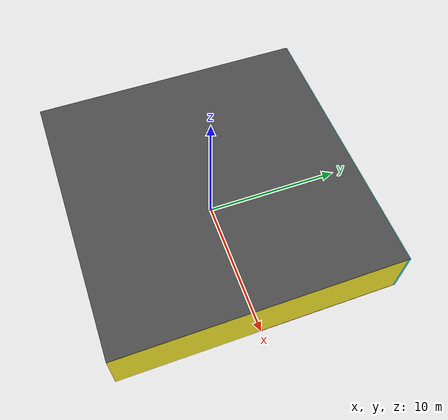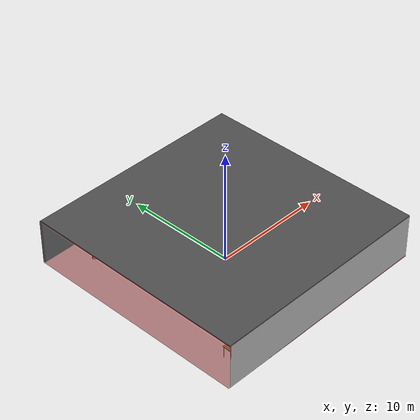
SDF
<sdf version="1.4">
 <world name="default">
  <physics type="ode">
   <max_step_size>0.001</max_step_size>
   <real_time_factor>1</real_time_factor>
   <real_time_update_rate>1000</real_time_update_rate>
   <gravity>0 0 -9.8</gravity>
  </physics>
  <scene><ambient>0.4 0.4 0.4 1</ambient><background>0.7 0.7 0.7 1</background><shadows>1</shadows></scene>
  <model name="Surrounding">
   <static>1</static>
   <link name="Ceiling">
    <collision name="Ceiling_Collision"><geometry><box><size>20 20 0.1</size></box></geometry></collision>
    <visual name="Ceiling_Visual">
     <geometry><box><size>20 20 0.1</size></box></geometry>
     <material>
      <script><uri>file://media/materials/scripts/gazebo.material</uri><name>Gazebo/Road</name></script>
     </material>
    </visual>
    <pose>0 0 4.05 0 0 0</pose>
   </link>
   <link name="Wall_South">
    <collision name="Wall_South_Collision">
     <geometry><box><size>20 0 4</size></box></geometry>
     <pose>0 0 2 0 -0 0</pose>
    </collision>
    <visual name="Wall_South_Visual">
     <pose>0 0 2 0 -0 0</pose>
     <geometry><box><size>20 0 4</size></box></geometry>
     <material>
      <script><uri>file://media/materials/scripts/gazebo.material</uri><name>Gazebo/CloudySky</name></script>
     </material>
    </visual>
    <velocity_decay><linear>0</linear><angular>0</angular></velocity_decay>
    <pose>0 -10 0 0 -0 0</pose>
   </link>
   <link name="Wall_East">
    <collision name="Wall_21_Collision">
     <geometry><box><size>20 0 4</size></box></geometry>
     <pose>0 0 2 0 -0 0</pose>
    </collision>
    <visual name="Wall_21_Visual">
     <pose>0 0 2 0 -0 0</pose>
     <geometry><box><size>20 0 4</size></box></geometry>
     <material>
      <script><uri>file://media/materials/scripts/gazebo.material</uri><name>Gazebo/YellowGlow</name></script>
     </material>
    </visual>
    <velocity_decay><linear>0</linear><angular>0</angular></velocity_decay>
    <pose>10 0 0 0 -0 1.5708</pose>
   </link>
   <link name="Wall_North">
    <collision name="Wall_22_Collision">
     <geometry><box><size>20 0.2 4</size></box></geometry>
     <pose>0 0 2 0 -0 0</pose>
    </collision>
    <visual name="Wall_22_Visual">
     <pose>0 0 2 0 -0 0</pose>
     <geometry><box><size>20 0.2 4</size></box></geometry>
     <material>
      <script><uri>file://media/materials/scripts/gazebo.material</uri><name>Gazebo/Turquoise</name></script>
     </material>
    </visual>
    <velocity_decay><linear>0</linear><angular>0</angular></velocity_decay>
    <pose>0 10 0 0 -0 0</pose>
   </link>
   <link name="Wall_West">
    <collision name="Wall_23_Collision">
     <geometry><box><size>20 0.2 4</size></box></geometry>
     <pose>0 0 2 0 -0 0</pose>
    </collision>
    <visual name="Wall_23_Visual">
     <pose>0 0 2 0 -0 0</pose>
     <geometry><box><size>20 0.2 4</size></box></geometry>
     <material>
      <script><uri>file://media/materials/scripts/gazebo.material</uri><name>Gazebo/RedTransparent</name></script>
     </material>
    </visual>
    <velocity_decay><linear>0</linear><angular>0</angular></velocity_decay>
    <pose>-10 0 0 0 0 -1.5708</pose>
   </link>
   <link name="Ground_link">
    <collision name="collision">
     <pose>0 0 .05 0 -0 0</pose>
     <geometry><box><size>20 20 0.1</size></box></geometry>
    </collision>
    <visual name="visual">
     <pose>0 0 .05 0 -0 0</pose>
     <geometry><box><size>20 20 0.1</size></box></geometry>
     <material>
      <script><uri>file://media/materials/scripts/gazebo.material</uri><name>Gazebo/RedTransparent</name></script>
     </material>
    </visual>
   </link>
   <static>1</static>
  </model>
  <spherical_coordinates>
   <surface_model>EARTH_WGS84</surface_model>
   <latitude_deg>0</latitude_deg>
   <longitude_deg>0</longitude_deg>
   <elevation>0</elevation>
   <heading_deg>0</heading_deg>
  </spherical_coordinates>
  <light name="lightball_0" type="diffuse">
   <diffuse>0.8 0.8 0.8 1</diffuse>
   <specular>0.2 0.2 0.2 1</specular>
   <attenuation>
    <range>100</range>
    <constant>0.7</constant>
    <linear>0.01</linear>
    <quadratic>0.001</quadratic>
   </attenuation>
   <direction>-0.5 0.1 -0.9</direction>
   <pose>5.3707846436 -4.85771684349 2.61956337701 0 0 0</pose>
  </light>
  <light name="lightball_1" type="diffuse">
   <diffuse>0.8 0.8 0.8 1</diffuse>
   <specular>0.2 0.2 0.2 1</specular>
   <attenuation>
    <range>100</range>
    <constant>0.7</constant>
    <linear>0.01</linear>
    <quadratic>0.001</quadratic>
   </attenuation>
   <direction>-0.5 0.1 -0.9</direction>
   <pose>-8.8714009723 -9.70031821191 1.4201736223 0 0 0</pose>
  </light>
  <light name="lightball_2" type="diffuse">
   <diffuse>0.8 0.8 0.8 1</diffuse>
   <specular>0.2 0.2 0.2 1</specular>
   <attenuation>
    <range>100</range>
    <constant>0.7</constant>
    <linear>0.01</linear>
    <quadratic>0.001</quadratic>
   </attenuation>
   <direction>-0.5 0.1 -0.9</direction>
   <pose>-9.68883334363 -7.74677728639 2.9226126591 0 0 0</pose>
  </light>
  <light name="lightball_3" type="diffuse">
   <diffuse>0.8 0.8 0.8 1</diffuse>
   <specular>0.2 0.2 0.2 1</specular>
   <attenuation>
    <range>100</range>
    <constant>0.7</constant>
    <linear>0.01</linear>
    <quadratic>0.001</quadratic>
   </attenuation>
   <direction>-0.5 0.1 -0.9</direction>
   <pose>-6.17880160119 -6.80005797218 1.86033360408 0 0 0</pose>
  </light>
  <light name="lightball_4" type="diffuse">
   <diffuse>0.8 0.8 0.8 1</diffuse>
   <specular>0.2 0.2 0.2 1</specular>
   <attenuation>
    <range>100</range>
    <constant>0.7</constant>
    <linear>0.01</linear>
    <quadratic>0.001</quadratic>
   </attenuation>
   <direction>-0.5 0.1 -0.9</direction>
   <pose>-0.883991440142 -6.89372577589 3.05068082739 0 0 0</pose>
  </light>
  <light name="lightball_5" type="diffuse">
   <diffuse>0.8 0.8 0.8 1</diffuse>
   <specular>0.2 0.2 0.2 1</specular>
   <attenuation>
    <range>100</range>
    <constant>0.7</constant>
    <linear>0.01</linear>
    <quadratic>0.001</quadratic>
   </attenuation>
   <direction>-0.5 0.1 -0.9</direction>
   <pose>1.10227463991 -9.02302710967 1.47858010141 0 0 0</pose>
  </light>
  <light name="lightball_6" type="diffuse">
   <diffuse>0.8 0.8 0.8 1</diffuse>
   <specular>0.2 0.2 0.2 1</specular>
   <attenuation>
    <range>100</range>
    <constant>0.7</constant>
    <linear>0.01</linear>
    <quadratic>0.001</quadratic>
   </attenuation>
   <direction>-0.5 0.1 -0.9</direction>
   <pose>2.41078265128 3.93237118242 1.20229793145 0 0 0</pose>
  </light>
  <light name="lightball_7" type="diffuse">
   <diffuse>0.8 0.8 0.8 1</diffuse>
   <specular>0.2 0.2 0.2 1</specular>
   <attenuation>
    <range>100</range>
    <constant>0.7</constant>
    <linear>0.01</linear>
    <quadratic>0.001</quadratic>
   </attenuation>
   <direction>-0.5 0.1 -0.9</direction>
   <pose>3.44617089847 -2.71551446814 1.10736854966 0 0 0</pose>
  </light>
  <include><uri>model://table</uri><pose>-7.66955559412 -8.17949510354 0 0 0 1.52293946558</pose></include>
  <include><uri>model://cabinet</uri><pose>-6.89249981159 7.48350585515 0 0 0 0.711904050178</pose></include>
  <include>
   <uri>model://construction_cone</uri>
   <pose>-4.35735638196 7.19520243983 0 0 0 1.86069889126</pose>
  </include>
  <include>
   <uri>model://textured_shapes</uri>
   <pose>-1.9457271427 -3.33251807267 0 0 0 1.99842401784</pose>
  </include>
  <include><uri>model://cabinet</uri><pose>3.63836621445 -6.82942093232 0 0 0 3.06580556359</pose></include>
  <include>
   <uri>model://textured_shapes</uri>
   <pose>5.5814170474 3.94737774353 0 0 0 1.4083299492</pose>
  </include>
 </world>
</sdf>

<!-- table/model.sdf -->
<sdf version="1.5">
  <model name="table">
    <static>true</static>
    <link name="link">
      <collision name="surface">
        <pose>0 0 1.0 0 0 0</pose>
        <geometry>
          <box>
            <size>1.5 0.8 0.03</size>
          </box>
        </geometry>
        <surface>
          <friction>
            <ode>
              <mu>0.6</mu>
              <mu2>0.6</mu2>
            </ode>
          </friction>
        </surface>
      </collision>
      <visual name="visual1">
        <pose>0 0 1.0 0 0 0</pose>
        <geometry>
          <box>
            <size>1.5 0.8 0.03</size>
          </box>
        </geometry>
        <material>
          <script>
            <uri>model://media/materials/scripts/gazebo.material</uri>
            <name>Gazebo/Wood</name>
          </script>
        </material>
      </visual>
      <collision name="front_left_leg">
        <pose>0.68 0.38 0.5 0 0 0</pose>
        <geometry>
          <cylinder>
            <radius>0.02</radius>
            <length>1.0</length>
          </cylinder>
        </geometry>
      </collision>
      <visual name="front_left_leg">
        <pose>0.68 0.38 0.5 0 0 0</pose>
        <geometry>
          <cylinder>
            <radius>0.02</radius>
            <length>1.0</length>
          </cylinder>
        </geometry>
        <material>
          <script>
            <uri>model://media/materials/scripts/gazebo.material</uri>
            <name>Gazebo/Grey</name>
          </script>
        </material>
      </visual>
      <collision name="front_right_leg">
        <pose>0.68 -0.38 0.5 0 0 0</pose>
        <geometry>
          <cylinder>
            <radius>0.02</radius>
            <length>1.0</length>
          </cylinder>
        </geometry>
      </collision>
      <visual name="front_right_leg">
        <pose>0.68 -0.38 0.5 0 0 0</pose>
        <geometry>
          <cylinder>
            <radius>0.02</radius>
            <length>1.0</length>
          </cylinder>
        </geometry>
        <material>
          <script>
            <uri>model://media/materials/scripts/gazebo.material</uri>
            <name>Gazebo/Grey</name>
          </script>
        </material>
      </visual>
      <collision name="back_right_leg">
        <pose>-0.68 -0.38 0.5 0 0 0</pose>
        <geometry>
          <cylinder>
            <radius>0.02</radius>
            <length>1.0</length>
          </cylinder>
        </geometry>
      </collision>
      <visual name="back_right_leg">
        <pose>-0.68 -0.38 0.5 0 0 0</pose>
        <geometry>
          <cylinder>
            <radius>0.02</radius>
            <length>1.0</length>
          </cylinder>
        </geometry>
        <material>
          <script>
            <uri>model://media/materials/scripts/gazebo.material</uri>
            <name>Gazebo/Grey</name>
          </script>
        </material>
      </visual>
      <collision name="back_left_leg">
        <pose>-0.68 0.38 0.5 0 0 0</pose>
        <geometry>
          <cylinder>
            <radius>0.02</radius>
            <length>1.0</length>
          </cylinder>
        </geometry>
      </collision>
      <visual name="back_left_leg">
        <pose>-0.68 0.38 0.5 0 0 0</pose>
        <geometry>
          <cylinder>
            <radius>0.02</radius>
            <length>1.0</length>
          </cylinder>
        </geometry>
        <material>
          <script>
            <uri>model://media/materials/scripts/gazebo.material</uri>
            <name>Gazebo/Grey</name>
          </script>
        </material>
      </visual>
    </link>
  </model>
</sdf>

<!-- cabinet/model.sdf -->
<sdf version="1.5">
  <model name="cabinet">
    <static>true</static>
    <link name="cabinet_bottom_plate">
      <inertial>
        <pose>0 0 -1 0 0 0</pose>
        <inertia>
          <ixx>2.050000</ixx>
          <ixy>0</ixy>
          <ixz>0</ixz>
          <iyy>2.050000</iyy>
          <iyz>0</iyz>
          <izz>2.050000</izz>
        </inertia>
        <mass>25.000000</mass>
      </inertial>
      <collision name="cabinet_bottom_plate_geom">
        <pose>0 0 0.010000 0 0 0</pose>
        <geometry>
          <box>
            <size>0.450000 0.450000 0.020000</size>
          </box>
        </geometry>
      </collision>
      <visual name="cabinet_bottom_plate_geom_visual">
        <pose>0 0 0.010000 0 0 0</pose>
        <geometry>
          <box>
            <size>0.450000 0.450000 0.020000</size>
          </box>
        </geometry>
        <material>
          <script>
            <uri>model://media/materials/scripts/gazebo.material</uri>
            <name>Gazebo/Wood</name>
          </script>
        </material>
      </visual>
      <collision name="cabinet_bottom_plate_geom_cabinet_back_plate">
        <pose>0.235000 0 0.510000 0 0 0</pose>
        <geometry>
          <box>
            <size>0.020000 0.450000 1.020000</size>
          </box>
        </geometry>
      </collision>
      <visual name="cabinet_bottom_plate_geom_cabinet_back_plate_visual">
        <pose>0.235000 0 0.510000 0 0 0</pose>
        <geometry>
          <box>
            <size>0.020000 0.450000 1.020000</size>
          </box>
        </geometry>
        <material>
          <script>
            <uri>model://media/materials/scripts/gazebo.material</uri>
            <name>Gazebo/Wood</name>
          </script>
        </material>
      </visual>
      <collision name="cabinet_bottom_plate_geom_cabinet_left_plate">
        <pose>0 0.235000 0.510000 0 0 0</pose>
        <geometry>
          <box>
            <size>0.450000 0.020000 1.020000</size>
          </box>
        </geometry>
      </collision>
      <visual name="cabinet_bottom_plate_geom_cabinet_left_plate_visual">
        <pose>0 0.235000 0.510000 0 0 0</pose>
        <geometry>
          <box>
            <size>0.450000 0.020000 1.020000</size>
          </box>
        </geometry>
        <material>
          <script>
            <uri>model://media/materials/scripts/gazebo.material</uri>
            <name>Gazebo/Wood</name>
          </script>
        </material>
      </visual>
      <collision name="cabinet_bottom_plate_geom_cabinet_middle_plate">
        <pose>0 0 0.510000 0 0 0</pose>
        <geometry>
          <box>
            <size>0.450000 0.450000 0.020000</size>
          </box>
        </geometry>
      </collision>
      <visual name="cabinet_bottom_plate_geom_cabinet_middle_plate_visual">
        <pose>0 0 0.510000 0 0 0</pose>
        <geometry>
          <box>
            <size>0.450000 0.450000 0.020000</size>
          </box>
        </geometry>
        <material>
          <script>
            <uri>model://media/materials/scripts/gazebo.material</uri>
            <name>Gazebo/Wood</name>
          </script>
        </material>
      </visual>
      <collision name="cabinet_bottom_plate_geom_cabinet_right_plate">
        <pose>0 -0.235000 0.510000 0 0 0</pose>
        <geometry>
          <box>
            <size>0.450000 0.020000 1.020000</size>
          </box>
        </geometry>
      </collision>
      <visual name="cabinet_bottom_plate_geom_cabinet_right_plate_visual">
        <pose>0 -0.235000 0.510000 0 0 0</pose>
        <geometry>
          <box>
            <size>0.450000 0.020000 1.020000</size>
          </box>
        </geometry>
        <material>
          <script>
            <uri>model://media/materials/scripts/gazebo.material</uri>
            <name>Gazebo/Wood</name>
          </script>
        </material>
      </visual>
      <collision name="cabinet_bottom_plate_geom_cabinet_top_plate">
        <pose>0 0 1.010000 0 0 0</pose>
        <geometry>
          <box>
            <size>0.450000 0.450000 0.020000</size>
          </box>
        </geometry>
      </collision>
      <visual name="cabinet_bottom_plate_geom_cabinet_top_plate_visual">
        <pose>0 0 1.010000 0 0 0</pose>
        <geometry>
          <box>
            <size>0.450000 0.450000 0.020000</size>
          </box>
        </geometry>
        <material>
          <script>
            <uri>model://media/materials/scripts/gazebo.material</uri>
            <name>Gazebo/Wood</name>
          </script>
        </material>
      </visual>
    </link>
  </model>
</sdf>

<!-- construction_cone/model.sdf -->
<sdf version="1.5">
  <model name="Construction Cone">
    <link name="link">
      <collision name="collision">
        <geometry>
          <mesh>
            <scale>10 10 10</scale>
            <uri>file://isr-testbed/construction_cone/meshes/construction_cone.dae</uri>
          </mesh>
        </geometry>
      </collision>
      <visual name="visual">
        <geometry>
          <mesh>
            <scale>10 10 10</scale>
            <uri>file://isr-testbed/construction_cone/meshes/construction_cone.dae</uri>
          </mesh>
        </geometry>
      </visual>
    </link>
  </model>
</sdf>

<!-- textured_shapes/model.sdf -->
<sdf version="1.6">
  <model name="textured_shapes">
    <pose>0 0 0.5 0 0 0</pose>
    <link name="box">
      <pose>0 -1.5 0 0 0 0</pose>
      <collision name="collision">
        <geometry>
          <box>
            <size>1 1 1</size>
          </box>
        </geometry>
      </collision>
      <visual name="visual">
        <geometry>
          <box>
            <size>1 1 1</size>
          </box>
        </geometry>
        <material>
          <script>
            <uri>model://../model_source/models/textured_shapes/materials/scripts</uri>
            <uri>model://../model_source/models/textured_shapes/materials/textures</uri>
            <name>TexturedShape/Squares</name>
          </script>
        </material>
      </visual>
    </link>
    <link name="sphere">
      <collision name="collision">
        <geometry>
          <sphere>
            <radius>0.5</radius>
          </sphere>
        </geometry>
      </collision>
      <visual name="visual">
        <geometry>
          <sphere>
            <radius>0.5</radius>
          </sphere>
        </geometry>
        <material>
          <script>
            <uri>model://../model_source/models/textured_shapes/materials/scripts</uri>
            <uri>model://../model_source/models/textured_shapes/materials/textures</uri>
            <name>TexturedShape/Squares</name>
          </script>
        </material>
      </visual>
    </link>
    <link name="cylinder">
      <pose>0 1.5 0 0 0 0</pose>
      <collision name="collision">
        <geometry>
          <cylinder>
            <radius>0.5</radius>
            <length>1</length>
          </cylinder>
        </geometry>
      </collision>
      <visual name="visual">
        <geometry>
          <cylinder>
            <radius>0.5</radius>
            <length>1</length>
          </cylinder>
        </geometry>
        <material>
          <script>
            <uri>model://../model_source/models/textured_shapes/materials/scripts</uri>
            <uri>model://../model_source/models/textured_shapes/materials/textures</uri>
            <name>TexturedShape/Squares</name>
          </script>
        </material>
      </visual>
    </link>
  </model>
</sdf>
